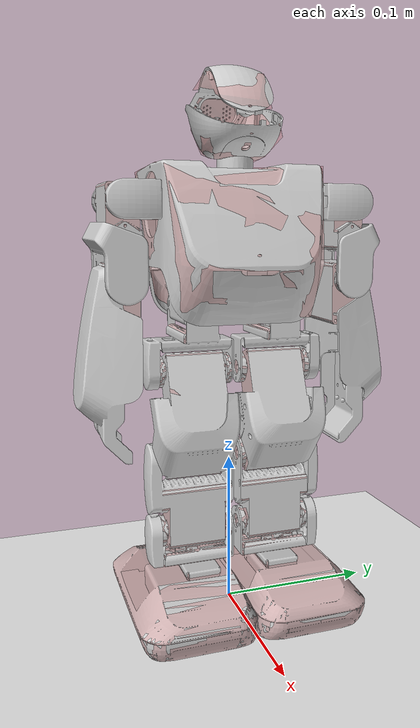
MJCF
<mujoco model="aelos">
  <compiler angle="radian" meshdir="../meshes" autolimits="true" />
  <option timestep="0.005" />
  <visual>
    <headlight diffuse="0.6 0.6 0.6" ambient="0.1 0.1 0.1" specular="0.9 0.9 0.9" />
    <rgba haze="0.15 0.25 0.35 1" />
    <global azimuth="-140" elevation="-20" offwidth="2080" offheight="1170" />
  </visual>
  <default>
    <default class="collision">
      <geom contype="1" conaffinity="1" rgba="0.9 0.3 0.3 0.18" />
    </default>
  </default>
  <asset>
    <texture type="skybox" builtin="gradient" rgb1=".4 .5 .6" rgb2="0 0 0" width="100" height="100" />
    <texture type="2d" name="groundplane" builtin="checker" mark="edge" rgb1="1 1 1" rgb2="1 1 1" markrgb="0 0 0" width="300" height="300" />
    <material name="groundplane" texture="groundplane" texuniform="true" texrepeat="5 5" reflectance="0" />
    <mesh name="robot_base_visual" file="visual/robot_base_visual.stl" />
    <mesh name="robot_base_collision" file="collision/robot_base_collision.stl" />
    <mesh name="R_Hand_douji_1_visual" file="visual/R_Hand_douji_1_visual.stl" />
    <mesh name="R_Hand_douji_1_collision" file="collision/R_Hand_douji_1_collision.stl" />
    <mesh name="R_Hand_duoji__2__visual" file="visual/R_Hand_duoji__2__visual.stl" />
    <mesh name="R_Hand_duoji__2__collision" file="collision/R_Hand_duoji__2__collision.stl" />
    <mesh name="R_Hand_duoji__3__visual" file="visual/R_Hand_duoji__3__visual.stl" />
    <mesh name="R_Hand_duoji__3__collision" file="collision/R_Hand_duoji__3__collision.stl" />
    <mesh name="L_Hand_1__visual" file="visual/L_Hand_1__visual.stl" />
    <mesh name="L_Hand_1__collision" file="collision/L_Hand_1__collision.stl" />
    <mesh name="L_Hand_duoji__2_visual" file="visual/L_Hand_duoji__2_visual.stl" />
    <mesh name="L_Hand_duoji__2_collision" file="collision/L_Hand_duoji__2_collision.stl" />
    <mesh name="L_Hand_duoji__3_visual" file="visual/L_Hand_duoji__3_visual.stl" />
    <mesh name="L_Hand_duoji__3_collision" file="collision/L_Hand_duoji__3_collision.stl" />
    <mesh name="R_Leg__1_visual" file="visual/R_Leg__1_visual.stl" />
    <mesh name="R_Leg__1_collision" file="collision/R_Leg__1_collision.stl" />
    <mesh name="R_Leg_duoji_2_2_visual" file="visual/R_Leg_duoji_2_2_visual.stl" />
    <mesh name="R_Leg_duoji_2_2_collision" file="collision/R_Leg_duoji_2_2_collision.stl" />
    <mesh name="R_Leg_duoji_3__visual" file="visual/R_Leg_duoji_3__visual.stl" />
    <mesh name="R_Leg_duoji_3__collision" file="collision/R_Leg_duoji_3__collision.stl" />
    <mesh name="R_Leg__4_visual" file="visual/R_Leg__4_visual.stl" />
    <mesh name="R_Leg__4_collision" file="collision/R_Leg__4_collision.stl" />
    <mesh name="R_Leg_duoji_5__visual" file="visual/R_Leg_duoji_5__visual.stl" />
    <mesh name="R_Leg_duoji_5__collision" file="collision/R_Leg_duoji_5__collision.stl" />
    <mesh name="L_Leg_1__visual" file="visual/L_Leg_1__visual.stl" />
    <mesh name="L_Leg_1__collision" file="collision/L_Leg_1__collision.stl" />
    <mesh name="L_leg_duoji__2_visual" file="visual/L_leg_duoji__2_visual.stl" />
    <mesh name="L_leg_duoji__2_collision" file="collision/L_leg_duoji__2_collision.stl" />
    <mesh name="L_Leg_duoji__3_visual" file="visual/L_Leg_duoji__3_visual.stl" />
    <mesh name="L_Leg_duoji__3_collision" file="collision/L_Leg_duoji__3_collision.stl" />
    <mesh name="L_Leg__4_visual" file="visual/L_Leg__4_visual.stl" />
    <mesh name="L_Leg__4_collision" file="collision/L_Leg__4_collision.stl" />
    <mesh name="L_Leg_douji_5__visual" file="visual/L_Leg_douji_5__visual.stl" />
    <mesh name="L_Leg_douji_5__collision" file="collision/L_Leg_douji_5__collision.stl" />
  </asset>
  <worldbody>
    <geom name="floor" size="0 0 0.01" type="plane" material="groundplane" contype="1" conaffinity="0" priority="1" friction="0.6" condim="3" />
    <light diffuse=".5 .5 .5" pos="-3 -3 5" dir="3 3 -5" castshadow="true" />
    <body name="robot_base">
      <freejoint name="root" />
      <inertial pos="-0.011615 0.000247 0.256682" mass="0.89999997615814" fullinertia="0.00184014901 0.00193358846 0.00178445671 4.57598117e-05 -8.64779668e-05 -1.92657479e-05" />
      <geom type="mesh" mesh="robot_base_visual" contype="0" conaffinity="0" group="1" density="0" rgba="0.82 0.82 0.82 1" pos="0 0 0" quat="0.707106781 0 0 0.707106781" />
      <geom type="mesh" mesh="robot_base_collision" class="collision" pos="0 0 0" quat="0.707106781 0 0 0.707106781" />
      <body name="R_Hand_douji_1" pos="0.008406 -0.031275 0.269404" quat="0.701060872 -0.701061163 0.0922681061 0.0922686081">
        <joint name="jointRarm1" type="hinge" axis="0 0 1" limited="false" damping="0.2" armature="0.001" />
        <inertial pos="0.000147 -0.001249 -0.024092" mass="0.011180000379682" fullinertia="2.3590024075163e-06 1.7780735892598e-06 6.7503254976796e-07 -2.9979200390309e-08 -1.6106000705655e-10 -4.3733078995659e-08" />
        <geom type="mesh" mesh="R_Hand_douji_1_visual" contype="0" conaffinity="0" group="1" density="0" rgba="0.82 0.82 0.82 1" />
        <geom type="mesh" mesh="R_Hand_douji_1_collision" class="collision" />
        <body name="R_Hand_duoji__2_" pos="0.000000 0.000001 -0.041500" quat="-0.358918034 -0.504357848 0.49556745 0.609273263">
          <joint name="jointRarm2" type="hinge" axis="0 0 1" limited="true" range="0 3.14" damping="0.2" armature="0.001" />
          <inertial pos="-0.009077 -0.002935 0.001425" mass="0.076999999582767" fullinertia="2.4332316209408e-05 1.566596827378e-05 1.3466315999821e-05 -1.0667594911875e-07 -1.1999650549924e-07 2.848122009355e-07" />
          <geom type="mesh" mesh="R_Hand_duoji__2__visual" contype="0" conaffinity="0" group="1" density="0" rgba="0.82 0.82 0.82 1" />
          <geom type="mesh" mesh="R_Hand_duoji__2__collision" class="collision" />
          <body name="R_Hand_duoji__3_" pos="-0.046365 -0.012425 -0.000001" quat="0.871859806 -4.87254408e-05 6.50223215e-05 -0.489755523">
            <joint name="jointRarm3" type="hinge" axis="0 0 1" limited="true" range="-2.19 1.63" damping="0.2" armature="0.001" />
            <inertial pos="-0.002876 -0.008362 0.000058" mass="0.11100000143051" fullinertia="3.1080635325809e-05 2.0218438345852e-05 1.7643511794434e-05 1.2642801430865e-08 -1.4704575813965e-07 -5.2642365031237e-07" />
            <geom type="mesh" mesh="R_Hand_duoji__3__visual" contype="0" conaffinity="0" group="1" density="0" rgba="0.82 0.82 0.82 1" />
            <geom type="mesh" mesh="R_Hand_duoji__3__collision" class="collision" />
          </body>
        </body>
      </body>
      <body name="L_Hand_1_" pos="0.008406 0.030724 0.269404" quat="0.701055685 -0.701055275 0.0923102157 0.0923106251">
        <joint name="jointLarm1" type="hinge" axis="0 0 1" limited="false" damping="0.2" armature="0.001" />
        <inertial pos="0.000651 -0.001322 0.025034" mass="0.011180000379682" fullinertia="2.3590024075163e-06 1.7780735892598e-06 6.7503254976796e-07 -2.9979200390309e-08 -1.6106000705655e-10 -4.3733078995659e-08" />
        <geom type="mesh" mesh="L_Hand_1__visual" contype="0" conaffinity="0" group="1" density="0" rgba="0.82 0.82 0.82 1" />
        <geom type="mesh" mesh="L_Hand_1__collision" class="collision" />
        <body name="L_Hand_duoji__2" pos="0.000000 0.000000 0.041500" quat="0.00621412254 -0.684581433 0.176986541 -0.707096465">
          <joint name="jointLarm2" type="hinge" axis="0 0 1" limited="true" range="0 3.14" damping="0.2" armature="0.001" />
          <inertial pos="-0.002886 -0.009123 -0.001426" mass="0.076999999582767" fullinertia="2.4332316209408e-05 1.566596827378e-05 1.3466315999821e-05 -1.0667594911875e-07 -1.1999650549924e-07 2.848122009355e-07" />
          <geom type="mesh" mesh="L_Hand_duoji__2_visual" contype="0" conaffinity="0" group="1" density="0" rgba="0.82 0.82 0.82 1" />
          <geom type="mesh" mesh="L_Hand_duoji__2_collision" class="collision" />
          <body name="L_Hand_duoji__3" pos="-0.012423 -0.046365 0.000009" quat="0.999931195 3.05343088e-07 1.83050269e-06 0.0117305577">
            <joint name="jointLarm3" type="hinge" axis="0 0 1" limited="true" range="-2.19 1.63" damping="0.2" armature="0.001" />
            <inertial pos="-0.003469 -0.010594 -0.000061" mass="0.11100000143051" fullinertia="3.1080635325809e-05 2.0218438345852e-05 1.7643511794434e-05 1.2642801430865e-08 -1.4704575813965e-07 -5.2642365031237e-07" />
            <geom type="mesh" mesh="L_Hand_duoji__3_visual" contype="0" conaffinity="0" group="1" density="0" rgba="0.82 0.82 0.82 1" />
            <geom type="mesh" mesh="L_Hand_duoji__3_collision" class="collision" />
          </body>
        </body>
      </body>
      <body name="R_Leg__1" pos="0.008406 -0.027275 0.204407" quat="-0.430453655 0.560989603 0.430453645 -0.560990174">
        <joint name="jointRleg1" type="hinge" axis="0 0 1" limited="true" range="0 1.4" damping="0.2" armature="0.001" />
        <inertial pos="0.003485 0.016628 -0.000690" mass="0.021180000156164" fullinertia="4.375217338501e-06 3.2797624671446e-06 1.3282617371156e-06 -7.7754442295744e-08 3.2572604220547e-08 -1.0702529973538e-07" />
        <geom type="mesh" mesh="R_Leg__1_visual" contype="0" conaffinity="0" group="1" density="0" rgba="0.82 0.82 0.82 1" />
        <geom type="mesh" mesh="R_Leg__1_collision" class="collision" />
        <body name="R_Leg_duoji_2_2" pos="0.010612 0.039604 -0.000000" quat="0.612380287 -0.182985747 0.683019491 -0.353540627">
          <joint name="jointRleg2" type="hinge" axis="0 0 1" limited="true" range="-1.38 1.98" damping="0.2" armature="0.001" />
          <inertial pos="-0.017556 0.023636 0.000174" mass="0.13830000162125" fullinertia="9.9915861335989e-05 8.8416508725748e-05 2.7654466015528e-05 5.672208484528e-07 3.2338228300695e-06 -6.9826619355059e-07" />
          <geom type="mesh" mesh="R_Leg_duoji_2_2_visual" contype="0" conaffinity="0" group="1" density="0" rgba="0.82 0.82 0.82 1" />
          <geom type="mesh" mesh="R_Leg_duoji_2_2_collision" class="collision" />
          <body name="R_Leg_duoji_3_" pos="-0.040955 0.040960 0.000000" quat="0.96592403 1.01663236e-07 8.83203992e-07 0.258825748">
            <joint name="jointRleg3" type="hinge" axis="0 0 1" limited="true" range="-0.54 2.38" damping="0.2" armature="0.001" />
            <inertial pos="-0.010377 0.038882 -0.000509" mass="0.067970000207424" fullinertia="2.2194842411341e-05 1.4065387847668e-05 1.2543334414349e-05 1.425460084736e-07 1.780596553253e-07 -1.2297483037128e-06" />
            <geom type="mesh" mesh="R_Leg_duoji_3__visual" contype="0" conaffinity="0" group="1" density="0" rgba="0.82 0.82 0.82 1" />
            <geom type="mesh" mesh="R_Leg_duoji_3__collision" class="collision" />
            <body name="R_Leg__4" pos="-0.012420 0.046373 -0.000000" quat="-0.965933994 4.0023308e-07 -2.31091519e-07 -0.258788559">
              <joint name="jointRleg4" type="hinge" axis="0 0 1" limited="true" range="-1.45 1.8" damping="0.2" armature="0.001" />
              <inertial pos="0.003846 0.016370 0.000509" mass="0.021180000156164" fullinertia="4.3384232141934e-06 3.3121863560683e-06 1.2662293000639e-06 1.2833161207901e-08 7.7632495510284e-08 2.2850776212577e-08" />
              <geom type="mesh" mesh="R_Leg__4_visual" contype="0" conaffinity="0" group="1" density="0" rgba="0.82 0.82 0.82 1" />
              <geom type="mesh" mesh="R_Leg__4_collision" class="collision" />
              <body name="R_Leg_duoji_5_" pos="0.010613 0.039607 0.000000" quat="-0.683012836 8.46001241e-06 0.707106537 0.183013146">
                <joint name="jointRleg5" type="hinge" axis="0 0 1" limited="true" range="-0.35 0.0" damping="0.2" armature="0.001" />
                <inertial pos="-0.010649 -0.003383 -0.000030" mass="0.14309999346733" fullinertia="4.0839354823672e-05 2.6716376732524e-05 2.3156317813352e-05 -2.0378895117296e-07 -4.2565058532426e-07 -3.9567653875815e-07" />
                <geom type="mesh" mesh="R_Leg_duoji_5__visual" contype="0" conaffinity="0" group="1" density="0" rgba="0.82 0.82 0.82 1" />
                <geom type="mesh" mesh="R_Leg_duoji_5__collision" class="collision" />
                <body name="R_toe_front" pos="-0.0105 0.0 -0.0625" />
              </body>
            </body>
          </body>
        </body>
      </body>
      <body name="L_Leg_1_" pos="0.008406 0.026725 0.204407" quat="-0.560989396 0.430453925 0.560989818 -0.430454108">
        <joint name="jointLleg1" type="hinge" axis="0 0 1" limited="true" range="-1.4 0" damping="0.2" armature="0.001" />
        <inertial pos="-0.005270 0.016150 -0.000690" mass="0.021180000156164" fullinertia="4.375217338501e-06 3.2797624671446e-06 1.3282617371156e-06 -7.7754442295744e-08 3.2572604220547e-08 -1.0702529973538e-07" />
        <geom type="mesh" mesh="L_Leg_1__visual" contype="0" conaffinity="0" group="1" density="0" rgba="0.82 0.82 0.82 1" />
        <geom type="mesh" mesh="L_Leg_1__collision" class="collision" />
        <body name="L_leg_duoji__2" pos="-0.010613 0.039604 0.000000" quat="0.683008838 1.64828997e-06 0.707106811 0.183027006">
          <joint name="jointLleg2" type="hinge" axis="0 0 1" limited="true" range="-1.38 1.98" damping="0.2" armature="0.001" />
          <inertial pos="0.011688 0.027009 0.000174" mass="0.13830000162125" fullinertia="9.9915861335989e-05 8.8416508725748e-05 2.7654466015528e-05 5.672208484528e-07 3.2338228300695e-06 -6.9826619355059e-07" />
          <geom type="mesh" mesh="L_leg_duoji__2_visual" contype="0" conaffinity="0" group="1" density="0" rgba="0.82 0.82 0.82 1" />
          <geom type="mesh" mesh="L_leg_duoji__2_collision" class="collision" />
          <body name="L_Leg_duoji__3" pos="0.014993 0.055949 0.000001" quat="0.965929724 -1.80938175e-06 3.05478777e-07 -0.258804497">
            <joint name="jointLleg3" type="hinge" axis="0 0 1" limited="true" range="-0.54 2.38" damping="0.2" armature="0.001" />
            <inertial pos="-0.010414 0.038858 -0.000509" mass="0.067970000207424" fullinertia="2.2194842411341e-05 1.4065387847668e-05 1.2543334414349e-05 1.425460084736e-07 1.780596553253e-07 -1.2297483037128e-06" />
            <geom type="mesh" mesh="L_Leg_duoji__3_visual" contype="0" conaffinity="0" group="1" density="0" rgba="0.82 0.82 0.82 1" />
            <geom type="mesh" mesh="L_Leg_duoji__3_collision" class="collision" />
            <body name="L_Leg__4" pos="-0.012421 0.046373 -0.000000" quat="-0.866039628 -1.87937727e-06 -1.60171951e-06 0.499975362">
              <joint name="jointLleg4" type="hinge" axis="0 0 1" limited="true" range="-1.45 1.8" damping="0.2" armature="0.001" />
              <inertial pos="-0.016369 0.003847 0.000509" mass="0.021180000156164" fullinertia="4.3384232141934e-06 3.3121863560683e-06 1.2662293000639e-06 1.2833161207901e-08 7.7632495510284e-08 2.2850776212577e-08" />
              <geom type="mesh" mesh="L_Leg__4_visual" contype="0" conaffinity="0" group="1" density="0" rgba="0.82 0.82 0.82 1" />
              <geom type="mesh" mesh="L_Leg__4_collision" class="collision" />
              <body name="L_Leg_douji_5_" pos="-0.039606 0.010617 0.000000" quat="-0.612390109 -0.499970237 0.500029933 -0.353522534">
                <joint name="jointLleg5" type="hinge" axis="0 0 1" limited="true" range="0.0 0.35" damping="0.2" armature="0.001" />
                <inertial pos="0.009152 0.001923 -0.000031" mass="0.14309999346733" fullinertia="4.0839354823672e-05 2.6716376732524e-05 2.3156317813352e-05 -2.0378895117296e-07 -4.2565058532426e-07 -3.9567653875815e-07" />
                <geom type="mesh" mesh="L_Leg_douji_5__visual" contype="0" conaffinity="0" group="1" density="0" rgba="0.82 0.82 0.82 1" />
                <geom type="mesh" mesh="L_Leg_douji_5__collision" class="collision" />
                <body name="L_toe_front" pos="0.0081 0.0023 -0.0625" />
              </body>
            </body>
          </body>
        </body>
      </body>
      <body name="site_hips" pos="0.008406 -0.000275 0.204407" />
      <body name="site_left_shoulder" pos="0.008406 0.030724 0.269404" />
      <body name="site_right_shoulder" pos="0.008406 -0.031275 0.269404" />
    </body>
  </worldbody>
  <actuator>
    <motor name="jointRarm1" joint="jointRarm1" gear="1" ctrlrange="-3.1416 3.1416" />
    <motor name="jointRarm2" joint="jointRarm2" gear="1" ctrlrange="-3.1416 3.1416" />
    <motor name="jointRarm3" joint="jointRarm3" gear="1" ctrlrange="-3.1416 3.1416" />
    <motor name="jointLarm1" joint="jointLarm1" gear="1" ctrlrange="-3.1416 3.1416" />
    <motor name="jointLarm2" joint="jointLarm2" gear="1" ctrlrange="-3.1416 3.1416" />
    <motor name="jointLarm3" joint="jointLarm3" gear="1" ctrlrange="-3.1416 3.1416" />
    <motor name="jointRleg1" joint="jointRleg1" gear="1" ctrlrange="-3.1416 3.1416" />
    <motor name="jointRleg2" joint="jointRleg2" gear="1" ctrlrange="-3.1416 3.1416" />
    <motor name="jointRleg3" joint="jointRleg3" gear="1" ctrlrange="-3.1416 3.1416" />
    <motor name="jointRleg4" joint="jointRleg4" gear="1" ctrlrange="-3.1416 3.1416" />
    <motor name="jointRleg5" joint="jointRleg5" gear="1" ctrlrange="-3.1416 3.1416" />
    <motor name="jointLleg1" joint="jointLleg1" gear="1" ctrlrange="-3.1416 3.1416" />
    <motor name="jointLleg2" joint="jointLleg2" gear="1" ctrlrange="-3.1416 3.1416" />
    <motor name="jointLleg3" joint="jointLleg3" gear="1" ctrlrange="-3.1416 3.1416" />
    <motor name="jointLleg4" joint="jointLleg4" gear="1" ctrlrange="-3.1416 3.1416" />
    <motor name="jointLleg5" joint="jointLleg5" gear="1" ctrlrange="-3.1416 3.1416" />
  </actuator>
</mujoco>
